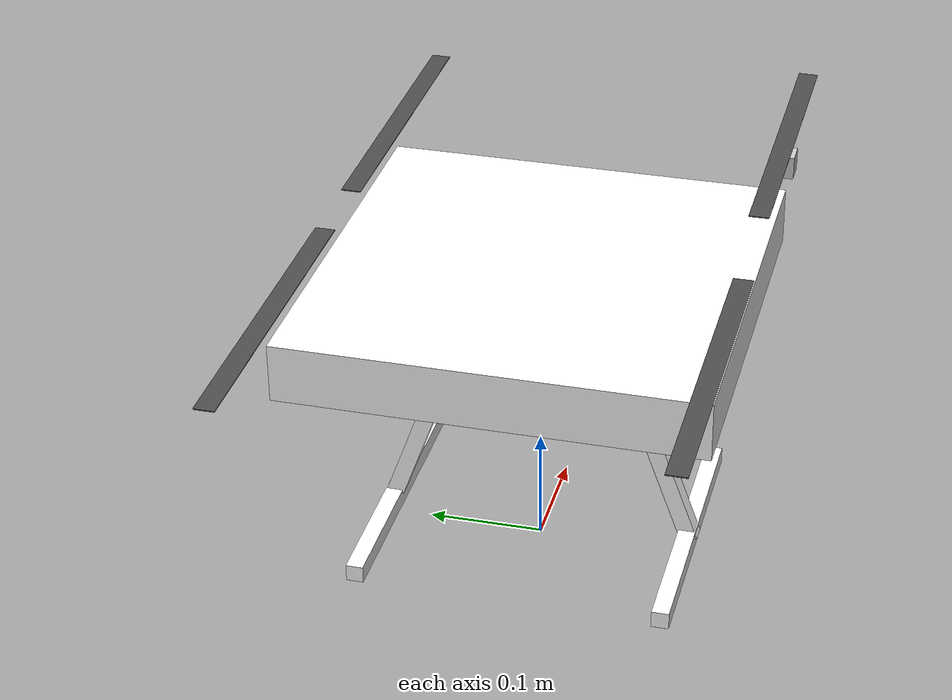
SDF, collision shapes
<?xml version="1.0" encoding="UTF-8"?>
<sdf version='1.9'>
  <model name='x500 tilt'>
    <pose>0 0 .24 0 0 0</pose>
    <self_collide>false</self_collide>
    <static>false</static>
    <link name="base_link">
      <inertial>
        <mass>2.0</mass>
        <inertia>
          <ixx>0.02166666666666667</ixx>
          <ixy>0</ixy>
          <ixz>0</ixz>
          <iyy>0.02166666666666667</iyy>
          <iyz>0</iyz>
          <izz>0.04000000000000001</izz>
        </inertia>
      </inertial>
      <gravity>true</gravity>
      <velocity_decay/>
      <visual name="base_link_visual">
        <pose>0 0 .025 0 0 3.141592654</pose>
        <geometry>
          <mesh>
            <scale>1 1 1</scale>
            <uri>model://x500/meshes/NXP-HGD-CF.dae</uri>
          </mesh>
        </geometry>
      </visual>
      <visual name="5010_motor_base_0">
        <pose>0.174 0.174 .032 0 0 -.45</pose>
        <geometry>
          <mesh>
            <scale>1 1 1</scale>
            <uri>model://x500/meshes/5010Base.dae</uri>
          </mesh>
        </geometry>
      </visual>
      <visual name="5010_motor_base_1">
        <pose>-0.174 0.174 .032 0 0 -.45</pose>
        <geometry>
          <mesh>
            <scale>1 1 1</scale>
            <uri>model://x500/meshes/5010Base.dae</uri>
          </mesh>
        </geometry>
      </visual>
      <visual name="5010_motor_base_2">
        <pose>0.174 -0.174 .032 0 0 -.45</pose>
        <geometry>
          <mesh>
            <scale>1 1 1</scale>
            <uri>model://x500/meshes/5010Base.dae</uri>
          </mesh>
        </geometry>
      </visual>
      <visual name="5010_motor_base_3">
        <pose>-0.174 -0.174 .032 0 0 -.45</pose>
        <geometry>
          <mesh>
            <scale>1 1 1</scale>
            <uri>model://x500/meshes/5010Base.dae</uri>
          </mesh>
        </geometry>
      </visual>
      <visual name="NXP_FMUK66_FRONT">
        <pose>0.047 .001 .043 1 0 1.57</pose>
        <cast_shadows>false</cast_shadows>
        <geometry>
          <plane>
            <normal>0 0 1</normal>
            <size>.013 .007</size>
          </plane>
        </geometry>
        <material>
          <diffuse>1.0 1.0 1.0</diffuse>
          <specular>1.0 1.0 1.0</specular>
          <pbr>
            <metal>
              <albedo_map>model://x500/materials/textures/nxp.png</albedo_map>
            </metal>
          </pbr>
        </material>
      </visual>
      <visual name="NXP_FMUK66_TOP">
        <pose>-0.023 0 .0515 0 0 -1.57</pose>
        <cast_shadows>false</cast_shadows>
        <geometry>
          <plane>
            <normal>0 0 1</normal>
            <size>.013 .007</size>
          </plane>
        </geometry>
        <material>
          <diffuse>1.0 1.0 1.0</diffuse>
          <specular>1.0 1.0 1.0</specular>
          <pbr>
            <metal>
              <albedo_map>model://x500/materials/textures/nxp.png</albedo_map>
            </metal>
          </pbr>
        </material>
      </visual>
      <visual name="RDDRONE_FMUK66_TOP">
        <pose>-.03 0 .0515 0 0 -1.57</pose>
        <cast_shadows>false</cast_shadows>
        <geometry>
          <plane>
            <normal>0 0 1</normal>
            <size>.032 .0034</size>
          </plane>
        </geometry>
        <material>
          <diffuse>1.0 1.0 1.0</diffuse>
          <specular>1.0 1.0 1.0</specular>
          <pbr>
            <metal>
              <albedo_map>model://x500/materials/textures/rd.png</albedo_map>
            </metal>
          </pbr>
        </material>
      </visual>
      <collision name="base_link_collision_0">
        <pose>0 0 .007 0 0 0</pose>
        <geometry>
          <box>
            <size>0.35355339059327373 0.35355339059327373 0.05</size>
          </box>
        </geometry>
        <surface>
          <contact>
            <ode>
              <min_depth>0.001</min_depth>
              <max_vel>0</max_vel>
            </ode>
          </contact>
          <friction>
            <ode/>
          </friction>
        </surface>
      </collision>
      <collision name="base_link_collision_1">
        <pose>0 -0.098 -.123 -0.35 0 0</pose>
        <geometry>
          <box>
            <size>0.015 0.015 0.21</size>
          </box>
        </geometry>
        <surface>
          <contact>
            <ode>
              <min_depth>0.001</min_depth>
              <max_vel>0</max_vel>
            </ode>
          </contact>
          <friction>
            <ode/>
          </friction>
        </surface>
      </collision>
      <collision name="base_link_collision_2">
        <pose>0 0.098 -.123 0.35 0 0</pose>
        <geometry>
          <box>
            <size>0.015 0.015 0.21</size>
          </box>
        </geometry>
        <surface>
          <contact>
            <ode>
              <min_depth>0.001</min_depth>
              <max_vel>0</max_vel>
            </ode>
          </contact>
          <friction>
            <ode/>
          </friction>
        </surface>
      </collision>
      <collision name="base_link_collision_3">
        <pose>0 -0.132 -.2195 0 0 0</pose>
        <geometry>
          <box>
            <size>0.25 0.015 0.015</size>
          </box>
        </geometry>
        <surface>
          <contact>
            <ode>
              <min_depth>0.001</min_depth>
              <max_vel>0</max_vel>
            </ode>
          </contact>
          <friction>
            <ode/>
          </friction>
        </surface>
      </collision>
      <collision name="base_link_collision_4">
        <pose>0 0.132 -.2195 0 0 0</pose>
        <geometry>
          <box>
            <size>0.25 0.015 0.015</size>
          </box>
        </geometry>
        <surface>
          <contact>
            <ode>
              <min_depth>0.001</min_depth>
              <max_vel>0</max_vel>
            </ode>
          </contact>
          <friction>
            <ode/>
          </friction>
        </surface>
      </collision>
      <sensor name="air_pressure_sensor" type="air_pressure">
        <always_on>1</always_on>
        <update_rate>50</update_rate>
        <air_pressure>
          <pressure>
            <noise type="gaussian">
              <mean>0</mean>
              <stddev>0.01</stddev>
            </noise>
          </pressure>
        </air_pressure>
      </sensor>
      <sensor name="imu_sensor" type="imu">
        <always_on>1</always_on>
        <update_rate>250</update_rate>
      </sensor>
    </link>
    <link name="rotor_0_tilt_1">
      <gravity>true</gravity>
      <self_collide>false</self_collide>
      <velocity_decay/>
      <pose>0.174 -0.174 0.06 0 0 0</pose>
      <inertial>
          <mass>0.016076923076923075</mass>
          <inertia>
            <ixx>3.8464910483993325e-07</ixx>
            <iyy>2.6115851691700804e-05</iyy>
            <izz>2.649858234714004e-05</izz>
          </inertia>
        </inertial>
      <visual name='visual'>
        <geometry>
          <box>
            <size>0.02 0.02 0.02</size>
          </box>
        </geometry>
        <material>
          <ambient>0.8 0.0 0.0 1</ambient>
          <diffuse>0.8 0.8 0.8 1</diffuse>
          <specular>0.8 0.8 0.8 1</specular>
        </material>
      </visual>
      <collision name="rotor_0_tilt_collision">
        <pose>0 0 0 0 0 0 </pose>
        <geometry>
          <box>
            <size>0.02 0.02 0.02</size>
          </box>
        </geometry>
        <surface>
          <contact>
            <ode>
              <min_depth>0.001</min_depth>
              <max_vel>0</max_vel>
            </ode>
          </contact>
          <friction>
            <ode/>
          </friction>
        </surface>
      </collision>
    </link>
    <link name="rotor_0_tilt_2">
      <gravity>true</gravity>
      <self_collide>false</self_collide>
      <velocity_decay/>
      <pose>0.174 -0.174 0.06 0 0 0</pose>
      <inertial>
          <mass>0.016076923076923075</mass>
          <inertia>
            <ixx>3.8464910483993325e-07</ixx>
            <iyy>2.6115851691700804e-05</iyy>
            <izz>2.649858234714004e-05</izz>
          </inertia>
        </inertial>
      <visual name='visual'>
        <geometry>
          <box>
            <size>0.02 0.02 0.02</size>
          </box>
        </geometry>
        <material>
          <ambient>0.8 0.0 0.0 1</ambient>
          <diffuse>0.8 0.8 0.8 1</diffuse>
          <specular>0.8 0.8 0.8 1</specular>
        </material>
      </visual>
      <collision name="rotor_0_tilt_collision">
        <pose>0 0 0 0 0 0 </pose>
        <geometry>
          <box>
            <size>0.02 0.02 0.02</size>
          </box>
        </geometry>
        <surface>
          <contact>
            <ode>
              <min_depth>0.001</min_depth>
              <max_vel>0</max_vel>
            </ode>
          </contact>
          <friction>
            <ode/>
          </friction>
        </surface>
      </collision>
    </link>
    <link name="rotor_0">
      <gravity>true</gravity>
      <self_collide>false</self_collide>
      <velocity_decay/>
      <pose>0.174 -0.174 0.08 0 0 0</pose>
      <inertial>
          <mass>0.016076923076923075</mass>
          <inertia>
            <ixx>3.8464910483993325e-07</ixx>
            <iyy>2.6115851691700804e-05</iyy>
            <izz>2.649858234714004e-05</izz>
          </inertia>
        </inertial>
      <visual name="rotor_0_visual">
        <pose>-0.022 -0.14638461538461536 -0.016 0 0 0</pose>
        <geometry>
          <mesh>
            <scale>0.8461538461538461 0.8461538461538461 0.8461538461538461</scale>
            <uri>model://x500/meshes/1345_prop_ccw.stl</uri>
          </mesh>
        </geometry>
        <material>
          <script>
            <name>Gazebo/DarkGrey</name>
            <uri>file://media/materials/scripts/gazebo.material</uri>
          </script>
        </material>
      </visual>
      <visual name="rotor_0_visual_motor_bell">
        <pose>0 0 -.032 0 0 0</pose>
        <geometry>
          <mesh>
            <scale>1 1 1</scale>
            <uri>model://x500/meshes/5010Bell.dae</uri>
          </mesh>
        </geometry>
      </visual>
      <collision name="rotor_0_collision">
        <pose>0 0 0 0 0 0 </pose>
        <geometry>
          <box>
            <size>0.2792307692307692 0.016923076923076923 0.0008461538461538462</size>
          </box>
        </geometry>
        <surface>
          <contact>
            <ode>
              <min_depth>0.001</min_depth>
              <max_vel>0</max_vel>
            </ode>
          </contact>
          <friction>
            <ode/>
          </friction>
        </surface>
      </collision>
    </link>
    <plugin
      filename="gz-sim-joint-position-controller-system" name="gz::sim::systems::JointPositionController">
      <joint_name>servo_0</joint_name>
      <topic>/model/x500_tilt_1/servo_0</topic>
      <p_gain>1</p_gain>
      <i_gain>0</i_gain>
      <d_gain>0</d_gain>
    </plugin>
    <plugin
      filename="gz-sim-joint-position-controller-system" name="gz::sim::systems::JointPositionController">
      <joint_name>servo_1</joint_name>
      <topic>/model/x500_tilt_1/servo_1</topic>
      <p_gain>1</p_gain>
      <i_gain>0</i_gain>
      <d_gain>0</d_gain>
    </plugin>
    <joint name="servo_0" type="revolute">
      <parent>base_link</parent>
      <child>rotor_0_tilt_1</child>
      <axis>
        <xyz>1 0 0</xyz>
        <limit>
          <lower>-1e+16</lower>
          <upper>1e+16</upper>
        </limit>
        <dynamics>
          <damping>0.1</damping>
          <spring_reference>0</spring_reference>
          <spring_stiffness>0</spring_stiffness>
        </dynamics>
      </axis>
    </joint>
    <joint name="servo_1" type="revolute">
      <parent>rotor_0_tilt_1</parent>
      <child>rotor_0_tilt_2</child>
      <axis>
        <xyz>0 1 0</xyz>
        <limit>
          <lower>-1e+16</lower>
          <upper>1e+16</upper>
        </limit>
        <dynamics>
          <damping>0.1</damping>
          <spring_reference>0.0</spring_reference>
          <spring_stiffness>0</spring_stiffness>
        </dynamics>
      </axis>
    </joint>
    <joint name="rotor_0_joint" type="revolute">
      <parent>rotor_0_tilt_2</parent>
      <child>rotor_0</child>
      <axis>
        <xyz>0 0 1</xyz>
        <limit>
          <lower>-1e+16</lower>
          <upper>1e+16</upper>
        </limit>
        <dynamics>
          <spring_reference>0</spring_reference>
          <spring_stiffness>0</spring_stiffness>
        </dynamics>
      </axis>
    </joint>
    <link name="rotor_1">
      <gravity>true</gravity>
      <self_collide>false</self_collide>
      <velocity_decay/>
      <pose>-0.174 0.174 0.06 0 0 0</pose>
      <inertial>
          <mass>0.016076923076923075</mass>
          <inertia>
            <ixx>3.8464910483993325e-07</ixx>
            <iyy>2.6115851691700804e-05</iyy>
            <izz>2.649858234714004e-05</izz>
          </inertia>
        </inertial>
      <visual name="rotor_1_visual">
        <pose>-0.022 -0.14638461538461536 -0.016 0 0 0</pose>
        <geometry>
          <mesh>
            <scale>0.8461538461538461 0.8461538461538461 0.8461538461538461</scale>
            <uri>model://x500/meshes/1345_prop_ccw.stl</uri>
          </mesh>
        </geometry>
        <material>
          <script>
            <name>Gazebo/DarkGrey</name>
            <uri>file://media/materials/scripts/gazebo.material</uri>
          </script>
        </material>
      </visual>
      <visual name="rotor_1_visual_motor_top">
        <pose>0 0 -.032 0 0 0</pose>
        <geometry>
          <mesh>
            <scale>1 1 1</scale>
            <uri>model://x500/meshes/5010Bell.dae</uri>
          </mesh>
        </geometry>
      </visual>
      <collision name="rotor_1_collision">
        <pose>0 0 0 0 0 0 </pose>
        <geometry>
          <box>
            <size>0.2792307692307692 0.016923076923076923 0.0008461538461538462</size>
          </box>
        </geometry>
        <surface>
          <contact>
            <ode>
              <min_depth>0.001</min_depth>
              <max_vel>0</max_vel>
            </ode>
          </contact>
          <friction>
            <ode/>
          </friction>
        </surface>
      </collision>
    </link>
    <joint name="rotor_1_joint" type="revolute">
      <parent>base_link</parent>
      <child>rotor_1</child>
      <axis>
        <xyz>0 0 1</xyz>
        <limit>
          <lower>-1e+16</lower>
          <upper>1e+16</upper>
        </limit>
        <dynamics>
          <spring_reference>0</spring_reference>
          <spring_stiffness>0</spring_stiffness>
        </dynamics>
      </axis>
    </joint>
    <link name="rotor_2">
      <gravity>true</gravity>
      <self_collide>false</self_collide>
      <velocity_decay/>
      <pose>0.174 0.174 0.06 0 0 0</pose>
      <inertial>
          <mass>0.016076923076923075</mass>
          <inertia>
            <ixx>3.8464910483993325e-07</ixx>
            <iyy>2.6115851691700804e-05</iyy>
            <izz>2.649858234714004e-05</izz>
          </inertia>
        </inertial>
      <visual name="rotor_2_visual">
        <pose>-0.022 -0.14638461538461536 -0.016 0 0 0</pose>
        <geometry>
          <mesh>
            <scale>0.8461538461538461 0.8461538461538461 0.8461538461538461</scale>
            <uri>model://x500/meshes/1345_prop_cw.stl</uri>
          </mesh>
        </geometry>
        <material>
          <script>
            <name>Gazebo/DarkGrey</name>
            <uri>file://media/materials/scripts/gazebo.material</uri>
          </script>
        </material>
      </visual>
      <visual name="rotor_2_visual_motor_top">
        <pose>0 0 -.032 0 0 0</pose>
        <geometry>
          <mesh>
            <scale>1 1 1</scale>
            <uri>model://x500/meshes/5010Bell.dae</uri>
          </mesh>
        </geometry>
      </visual>
      <collision name="rotor_2_collision">
        <pose>0 0 0 0 0 0 </pose>
        <geometry>
          <box>
            <size>0.2792307692307692 0.016923076923076923 0.0008461538461538462</size>
          </box>
        </geometry>
        <surface>
          <contact>
            <ode>
              <min_depth>0.001</min_depth>
              <max_vel>0</max_vel>
            </ode>
          </contact>
          <friction>
            <ode/>
          </friction>
        </surface>
      </collision>
    </link>
    <joint name="rotor_2_joint" type="revolute">
      <parent>base_link</parent>
      <child>rotor_2</child>
      <axis>
        <xyz>0 0 1</xyz>
        <limit>
          <lower>-1e+16</lower>
          <upper>1e+16</upper>
        </limit>
        <dynamics>
          <spring_reference>0</spring_reference>
          <spring_stiffness>0</spring_stiffness>
        </dynamics>
      </axis>
    </joint>
    <link name="rotor_3">
      <gravity>true</gravity>
      <self_collide>false</self_collide>
      <velocity_decay/>
      <pose>-0.174 -0.174 0.06 0 0 0</pose>
      <inertial>
          <mass>0.016076923076923075</mass>
          <inertia>
            <ixx>3.8464910483993325e-07</ixx>
            <iyy>2.6115851691700804e-05</iyy>
            <izz>2.649858234714004e-05</izz>
          </inertia>
        </inertial>
      <visual name="rotor_3_visual">
        <pose>-0.022 -0.14638461538461536 -0.016 0 0 0</pose>
        <geometry>
          <mesh>
            <scale>0.8461538461538461 0.8461538461538461 0.8461538461538461</scale>
            <uri>model://x500/meshes/1345_prop_cw.stl</uri>
          </mesh>
        </geometry>
        <material>
          <script>
            <name>Gazebo/DarkGrey</name>
            <uri>file://media/materials/scripts/gazebo.material</uri>
          </script>
        </material>
      </visual>
      <visual name="rotor_3_visual_motor_top">
        <pose>0 0 -.032 0 0 0</pose>
        <geometry>
          <mesh>
            <scale>1 1 1</scale>
            <uri>model://x500/meshes/5010Bell.dae</uri>
          </mesh>
        </geometry>
      </visual>
      <collision name="rotor_3_collision">
        <pose>0 0 0 0 0 0 </pose>
        <geometry>
          <box>
            <size>0.2792307692307692 0.016923076923076923 0.0008461538461538462</size>
          </box>
        </geometry>
        <surface>
          <contact>
            <ode>
              <min_depth>0.001</min_depth>
              <max_vel>0</max_vel>
            </ode>
          </contact>
          <friction>
            <ode/>
          </friction>
        </surface>
      </collision>
    </link>
    <joint name="rotor_3_joint" type="revolute">
      <parent>base_link</parent>
      <child>rotor_3</child>
      <axis>
        <xyz>0 0 1</xyz>
        <limit>
          <lower>-1e+16</lower>
          <upper>1e+16</upper>
        </limit>
        <dynamics>
          <spring_reference>0</spring_reference>
          <spring_stiffness>0</spring_stiffness>
        </dynamics>
      </axis>
    </joint>
   <plugin filename="gz-sim-multicopter-motor-model-system" name="gz::sim::systems::MulticopterMotorModel">
      <jointName>rotor_0_joint</jointName>
      <linkName>rotor_0</linkName>
      <turningDirection>ccw</turningDirection>
      <timeConstantUp>0.0125</timeConstantUp>
      <timeConstantDown>0.025</timeConstantDown>
      <maxRotVelocity>1000.0</maxRotVelocity>
      <motorConstant>8.54858e-06</motorConstant>
      <momentConstant>0.016</momentConstant>
      <commandSubTopic>command/motor_speed</commandSubTopic>
      <motorNumber>0</motorNumber>
      <rotorDragCoefficient>8.06428e-05</rotorDragCoefficient>
      <rollingMomentCoefficient>1e-06</rollingMomentCoefficient>
      <rotorVelocitySlowdownSim>10</rotorVelocitySlowdownSim>
      <motorType>velocity</motorType>
    </plugin>
    <plugin filename="gz-sim-multicopter-motor-model-system" name="gz::sim::systems::MulticopterMotorModel">
      <jointName>rotor_1_joint</jointName>
      <linkName>rotor_1</linkName>
      <turningDirection>ccw</turningDirection>
      <timeConstantUp>0.0125</timeConstantUp>
      <timeConstantDown>0.025</timeConstantDown>
      <maxRotVelocity>1000.0</maxRotVelocity>
      <motorConstant>8.54858e-06</motorConstant>
      <momentConstant>0.016</momentConstant>
      <commandSubTopic>command/motor_speed</commandSubTopic>
      <motorNumber>1</motorNumber>
      <rotorDragCoefficient>8.06428e-05</rotorDragCoefficient>
      <rollingMomentCoefficient>1e-06</rollingMomentCoefficient>
      <rotorVelocitySlowdownSim>10</rotorVelocitySlowdownSim>
      <motorType>velocity</motorType>
    </plugin>
    <plugin filename="gz-sim-multicopter-motor-model-system" name="gz::sim::systems::MulticopterMotorModel">
      <jointName>rotor_2_joint</jointName>
      <linkName>rotor_2</linkName>
      <turningDirection>cw</turningDirection>
      <timeConstantUp>0.0125</timeConstantUp>
      <timeConstantDown>0.025</timeConstantDown>
      <maxRotVelocity>1000.0</maxRotVelocity>
      <motorConstant>8.54858e-06</motorConstant>
      <momentConstant>0.016</momentConstant>
      <commandSubTopic>command/motor_speed</commandSubTopic>
      <motorNumber>2</motorNumber>
      <rotorDragCoefficient>8.06428e-05</rotorDragCoefficient>
      <rollingMomentCoefficient>1e-06</rollingMomentCoefficient>
      <rotorVelocitySlowdownSim>10</rotorVelocitySlowdownSim>
      <motorType>velocity</motorType>
    </plugin>
    <plugin filename="gz-sim-multicopter-motor-model-system" name="gz::sim::systems::MulticopterMotorModel">
      <jointName>rotor_3_joint</jointName>
      <linkName>rotor_3</linkName>
      <turningDirection>cw</turningDirection>
      <timeConstantUp>0.0125</timeConstantUp>
      <timeConstantDown>0.025</timeConstantDown>
      <maxRotVelocity>1000.0</maxRotVelocity>
      <motorConstant>8.54858e-06</motorConstant>
      <momentConstant>0.016</momentConstant>
      <commandSubTopic>command/motor_speed</commandSubTopic>
      <motorNumber>3</motorNumber>
      <rotorDragCoefficient>8.06428e-05</rotorDragCoefficient>
      <rollingMomentCoefficient>1e-06</rollingMomentCoefficient>
      <rotorVelocitySlowdownSim>10</rotorVelocitySlowdownSim>
      <motorType>velocity</motorType>
    </plugin>
    <plugin filename="libPulsingRotor.so"
            name="pulsing_rotor_plugin::PulsingRotor">
    </plugin>
  </model>
</sdf>
